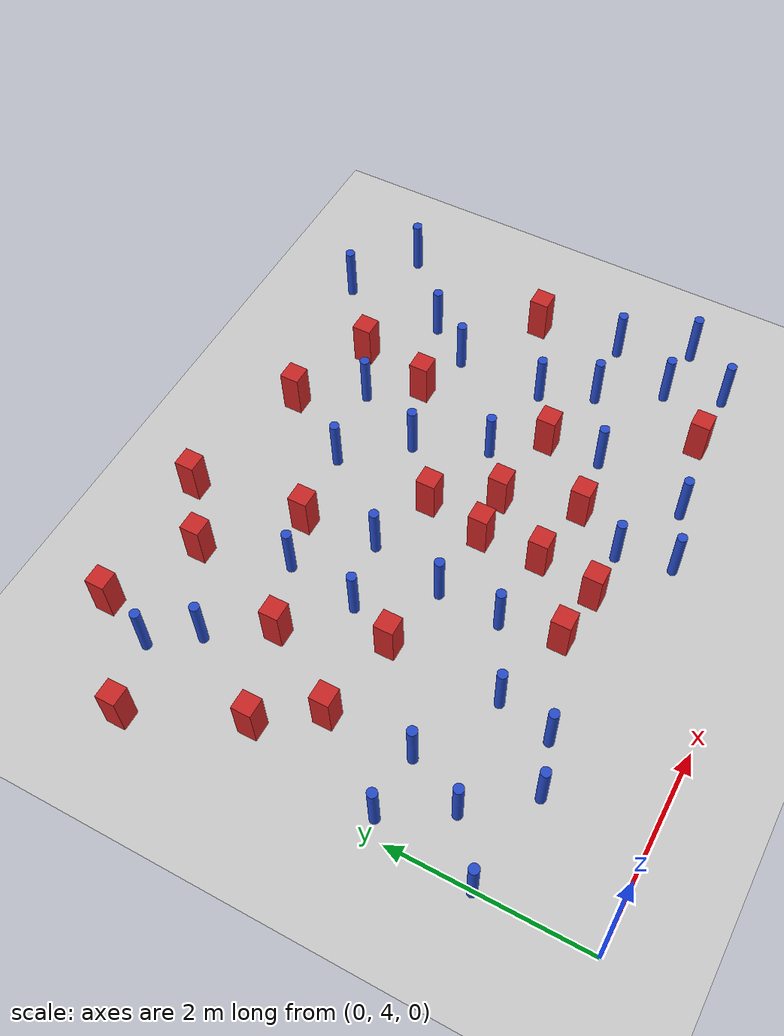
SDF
<sdf version="1.6">
 <world name="default">
  <model name="ground_plane">
   <static>1</static>
   <link name="link">
    <collision name="collision">
     <geometry><plane><normal>0 0 1</normal><size>100 100</size></plane></geometry>
     <surface><friction><ode><mu>100</mu><mu2>50</mu2></ode></friction></surface>
    </collision>
    <visual name="visual">
     <cast_shadows>0</cast_shadows>
     <geometry><plane><normal>0 0 1</normal><size>100 100</size></plane></geometry>
     <material>
      <ambient>1.0 1.0 1.0 1.0</ambient>
      <diffuse>0.8 0.8 0.8 1.0</diffuse>
      <specular>0.01 0.01 0.01 1.000000</specular>
     </material>
    </visual>
   </link>
  </model>
  <model name="square_post_obstacle4">
   <static>true</static>
   <pose>0.838831545188 9.4305301284 1.91545236811e-07 -7.35059704564e-06 1.12565212e-07 2.39332434364e-05</pose>
   <link name="link">
    <pose>0 0 0.25 0 -0 0</pose>
    <inertial>
     <mass>100</mass>
     <inertia>
      <ixx>0.166667</ixx>
      <ixy>0</ixy>
      <ixz>0</ixz>
      <iyy>0.166667</iyy>
      <iyz>0</iyz>
      <izz>0.166667</izz>
     </inertia>
    </inertial>
    <collision name="collision"><geometry><box><size>.2 .2 .5</size></box></geometry></collision>
    <visual name="visual">
     <geometry><box><size>.2 .2 .5</size></box></geometry>
     <material>
      <script><name>Gazebo/Red</name><uri>file://media/materials/scripts/gazebo.material</uri></script>
     </material>
    </visual>
   </link>
  </model>
  <model name="square_post_obstacle6">
   <static>true</static>
   <pose>-0.0670003100005 8.64714407239 1.91545236811e-07 -7.35059704564e-06 1.12565212e-07 2.39332434364e-05</pose>
   <link name="link">
    <pose>0 0 0.25 0 -0 0</pose>
    <inertial>
     <mass>100</mass>
     <inertia>
      <ixx>0.166667</ixx>
      <ixy>0</ixy>
      <ixz>0</ixz>
      <iyy>0.166667</iyy>
      <iyz>0</iyz>
      <izz>0.166667</izz>
     </inertia>
    </inertial>
    <collision name="collision"><geometry><box><size>.2 .2 .5</size></box></geometry></collision>
    <visual name="visual">
     <geometry><box><size>.2 .2 .5</size></box></geometry>
     <material>
      <script><name>Gazebo/Red</name><uri>file://media/materials/scripts/gazebo.material</uri></script>
     </material>
    </visual>
   </link>
  </model>
  <model name="pole_obstacle8">
   <static>true</static>
   <pose>5.28850879259 6.38729113192 7.38925637345e-09 -8.47170692796e-08 1.24976764786e-08 -1.74513093032e-07</pose>
   <link name="link">
    <pose>0 0 0.3 0 -0 0</pose>
    <inertial>
     <mass>1</mass>
     <inertia><ixx>0.145833</ixx><ixy>0</ixy><ixz>0</ixz><iyy>0.145833</iyy><iyz>0</iyz><izz>0.125</izz></inertia>
    </inertial>
    <collision name="collision">
     <geometry><cylinder><radius>0.05</radius><length>.6</length></cylinder></geometry>
    </collision>
    <visual name="visual">
     <geometry><cylinder><radius>0.05</radius><length>.6</length></cylinder></geometry>
     <material>
      <script><name>Gazebo/Blue</name><uri>file://media/materials/scripts/gazebo.material</uri></script>
     </material>
    </visual>
   </link>
  </model>
  <model name="square_post_obstacle16">
   <static>true</static>
   <pose>2.46480486465 5.48030747569 1.91545236811e-07 -7.35059704564e-06 1.12565212e-07 2.39332434364e-05</pose>
   <link name="link">
    <pose>0 0 0.25 0 -0 0</pose>
    <inertial>
     <mass>100</mass>
     <inertia>
      <ixx>0.166667</ixx>
      <ixy>0</ixy>
      <ixz>0</ixz>
      <iyy>0.166667</iyy>
      <iyz>0</iyz>
      <izz>0.166667</izz>
     </inertia>
    </inertial>
    <collision name="collision"><geometry><box><size>.2 .2 .5</size></box></geometry></collision>
    <visual name="visual">
     <geometry><box><size>.2 .2 .5</size></box></geometry>
     <material>
      <script><name>Gazebo/Red</name><uri>file://media/materials/scripts/gazebo.material</uri></script>
     </material>
    </visual>
   </link>
  </model>
  <model name="pole_obstacle11">
   <static>true</static>
   <pose>1.64120078932 5.71035406838 7.38925637345e-09 -8.47170692799e-08 1.24976765033e-08 -1.74513093018e-07</pose>
   <link name="link">
    <pose>0 0 0.3 0 -0 0</pose>
    <inertial>
     <mass>1</mass>
     <inertia><ixx>0.145833</ixx><ixy>0</ixy><ixz>0</ixz><iyy>0.145833</iyy><iyz>0</iyz><izz>0.125</izz></inertia>
    </inertial>
    <collision name="collision">
     <geometry><cylinder><radius>0.05</radius><length>.6</length></cylinder></geometry>
    </collision>
    <visual name="visual">
     <geometry><cylinder><radius>0.05</radius><length>.6</length></cylinder></geometry>
     <material>
      <script><name>Gazebo/Blue</name><uri>file://media/materials/scripts/gazebo.material</uri></script>
     </material>
    </visual>
   </link>
  </model>
  <model name="pole_obstacle15">
   <static>true</static>
   <pose>6.1654872875 8.98993450808 7.38925637345e-09 -8.471706928e-08 1.24976765081e-08 -1.74513093015e-07</pose>
   <link name="link">
    <pose>0 0 0.3 0 -0 0</pose>
    <inertial>
     <mass>1</mass>
     <inertia><ixx>0.145833</ixx><ixy>0</ixy><ixz>0</ixz><iyy>0.145833</iyy><iyz>0</iyz><izz>0.125</izz></inertia>
    </inertial>
    <collision name="collision">
     <geometry><cylinder><radius>0.05</radius><length>.6</length></cylinder></geometry>
    </collision>
    <visual name="visual">
     <geometry><cylinder><radius>0.05</radius><length>.6</length></cylinder></geometry>
     <material>
      <script><name>Gazebo/Blue</name><uri>file://media/materials/scripts/gazebo.material</uri></script>
     </material>
    </visual>
   </link>
  </model>
  <model name="square_post_obstacle26">
   <static>true</static>
   <pose>2.49713794785 8.27305381589 1.91545236811e-07 -7.35059704564e-06 1.12565212e-07 2.39332434364e-05</pose>
   <link name="link">
    <pose>0 0 0.25 0 -0 0</pose>
    <inertial>
     <mass>100</mass>
     <inertia>
      <ixx>0.166667</ixx>
      <ixy>0</ixy>
      <ixz>0</ixz>
      <iyy>0.166667</iyy>
      <iyz>0</iyz>
      <izz>0.166667</izz>
     </inertia>
    </inertial>
    <collision name="collision"><geometry><box><size>.2 .2 .5</size></box></geometry></collision>
    <visual name="visual">
     <geometry><box><size>.2 .2 .5</size></box></geometry>
     <material>
      <script><name>Gazebo/Red</name><uri>file://media/materials/scripts/gazebo.material</uri></script>
     </material>
    </visual>
   </link>
  </model>
  <model name="square_post_obstacle29">
   <static>true</static>
   <pose>4.49870740609 6.58374090806 1.91545236811e-07 -7.35059704564e-06 1.12565212e-07 2.39332434364e-05</pose>
   <link name="link">
    <pose>0 0 0.25 0 -0 0</pose>
    <inertial>
     <mass>100</mass>
     <inertia>
      <ixx>0.166667</ixx>
      <ixy>0</ixy>
      <ixz>0</ixz>
      <iyy>0.166667</iyy>
      <iyz>0</iyz>
      <izz>0.166667</izz>
     </inertia>
    </inertial>
    <collision name="collision"><geometry><box><size>.2 .2 .5</size></box></geometry></collision>
    <visual name="visual">
     <geometry><box><size>.2 .2 .5</size></box></geometry>
     <material>
      <script><name>Gazebo/Red</name><uri>file://media/materials/scripts/gazebo.material</uri></script>
     </material>
    </visual>
   </link>
  </model>
  <model name="pole_obstacle26">
   <static>true</static>
   <pose>-0.00314724878151 5.15009257863 7.38925637345e-09 -8.471706928e-08 1.24976765086e-08 -1.74513093017e-07</pose>
   <link name="link">
    <pose>0 0 0.3 0 -0 0</pose>
    <inertial>
     <mass>1</mass>
     <inertia><ixx>0.145833</ixx><ixy>0</ixy><ixz>0</ixz><iyy>0.145833</iyy><iyz>0</iyz><izz>0.125</izz></inertia>
    </inertial>
    <collision name="collision">
     <geometry><cylinder><radius>0.05</radius><length>.6</length></cylinder></geometry>
    </collision>
    <visual name="visual">
     <geometry><cylinder><radius>0.05</radius><length>.6</length></cylinder></geometry>
     <material>
      <script><name>Gazebo/Blue</name><uri>file://media/materials/scripts/gazebo.material</uri></script>
     </material>
    </visual>
   </link>
  </model>
  <model name="pole_obstacle33">
   <static>true</static>
   <pose>3.30640051247 8.38095119301 7.38925637345e-09 -8.47170692793e-08 1.24976764408e-08 -1.74513093041e-07</pose>
   <link name="link">
    <pose>0 0 0.3 0 -0 0</pose>
    <inertial>
     <mass>1</mass>
     <inertia><ixx>0.145833</ixx><ixy>0</ixy><ixz>0</ixz><iyy>0.145833</iyy><iyz>0</iyz><izz>0.125</izz></inertia>
    </inertial>
    <collision name="collision">
     <geometry><cylinder><radius>0.05</radius><length>.6</length></cylinder></geometry>
    </collision>
    <visual name="visual">
     <geometry><cylinder><radius>0.05</radius><length>.6</length></cylinder></geometry>
     <material>
      <script><name>Gazebo/Blue</name><uri>file://media/materials/scripts/gazebo.material</uri></script>
     </material>
    </visual>
   </link>
  </model>
  <model name="pole_obstacle34">
   <static>true</static>
   <pose>0.803339244444 6.14618215434 7.38925637345e-09 -8.471706928e-08 1.24976765086e-08 -1.74513093015e-07</pose>
   <link name="link">
    <pose>0 0 0.3 0 -0 0</pose>
    <inertial>
     <mass>1</mass>
     <inertia><ixx>0.145833</ixx><ixy>0</ixy><ixz>0</ixz><iyy>0.145833</iyy><iyz>0</iyz><izz>0.125</izz></inertia>
    </inertial>
    <collision name="collision">
     <geometry><cylinder><radius>0.05</radius><length>.6</length></cylinder></geometry>
    </collision>
    <visual name="visual">
     <geometry><cylinder><radius>0.05</radius><length>.6</length></cylinder></geometry>
     <material>
      <script><name>Gazebo/Blue</name><uri>file://media/materials/scripts/gazebo.material</uri></script>
     </material>
    </visual>
   </link>
  </model>
  <model name="square_post_obstacle36">
   <static>true</static>
   <pose>2.34214126111 9.46609434131 1.91545236811e-07 -7.35059704564e-06 1.12565212e-07 2.39332434364e-05</pose>
   <link name="link">
    <pose>0 0 0.25 0 -0 0</pose>
    <inertial>
     <mass>100</mass>
     <inertia>
      <ixx>0.166667</ixx>
      <ixy>0</ixy>
      <ixz>0</ixz>
      <iyy>0.166667</iyy>
      <iyz>0</iyz>
      <izz>0.166667</izz>
     </inertia>
    </inertial>
    <collision name="collision"><geometry><box><size>.2 .2 .5</size></box></geometry></collision>
    <visual name="visual">
     <geometry><box><size>.2 .2 .5</size></box></geometry>
     <material>
      <script><name>Gazebo/Red</name><uri>file://media/materials/scripts/gazebo.material</uri></script>
     </material>
    </visual>
   </link>
  </model>
  <model name="pole_obstacle40">
   <static>true</static>
   <pose>3.81581579694 7.78515670681 7.38925637345e-09 -8.47170692798e-08 1.24976765033e-08 -1.74513093019e-07</pose>
   <link name="link">
    <pose>0 0 0.3 0 -0 0</pose>
    <inertial>
     <mass>1</mass>
     <inertia><ixx>0.145833</ixx><ixy>0</ixy><ixz>0</ixz><iyy>0.145833</iyy><iyz>0</iyz><izz>0.125</izz></inertia>
    </inertial>
    <collision name="collision">
     <geometry><cylinder><radius>0.05</radius><length>.6</length></cylinder></geometry>
    </collision>
    <visual name="visual">
     <geometry><cylinder><radius>0.05</radius><length>.6</length></cylinder></geometry>
     <material>
      <script><name>Gazebo/Blue</name><uri>file://media/materials/scripts/gazebo.material</uri></script>
     </material>
    </visual>
   </link>
  </model>
  <model name="pole_obstacle41">
   <static>true</static>
   <pose>0.941815118839 8.4446619741 7.38925637345e-09 -8.47170692797e-08 1.249767648e-08 -1.74513093032e-07</pose>
   <link name="link">
    <pose>0 0 0.3 0 -0 0</pose>
    <inertial>
     <mass>1</mass>
     <inertia><ixx>0.145833</ixx><ixy>0</ixy><ixz>0</ixz><iyy>0.145833</iyy><iyz>0</iyz><izz>0.125</izz></inertia>
    </inertial>
    <collision name="collision">
     <geometry><cylinder><radius>0.05</radius><length>.6</length></cylinder></geometry>
    </collision>
    <visual name="visual">
     <geometry><cylinder><radius>0.05</radius><length>.6</length></cylinder></geometry>
     <material>
      <script><name>Gazebo/Blue</name><uri>file://media/materials/scripts/gazebo.material</uri></script>
     </material>
    </visual>
   </link>
  </model>
  <model name="pole_obstacle42">
   <static>true</static>
   <pose>5.99914364373 6.43813180377 7.38925637345e-09 -8.47170692796e-08 1.24976764786e-08 -1.74513093032e-07</pose>
   <link name="link">
    <pose>0 0 0.3 0 -0 0</pose>
    <inertial>
     <mass>1</mass>
     <inertia><ixx>0.145833</ixx><ixy>0</ixy><ixz>0</ixz><iyy>0.145833</iyy><iyz>0</iyz><izz>0.125</izz></inertia>
    </inertial>
    <collision name="collision">
     <geometry><cylinder><radius>0.05</radius><length>.6</length></cylinder></geometry>
    </collision>
    <visual name="visual">
     <geometry><cylinder><radius>0.05</radius><length>.6</length></cylinder></geometry>
     <material>
      <script><name>Gazebo/Blue</name><uri>file://media/materials/scripts/gazebo.material</uri></script>
     </material>
    </visual>
   </link>
  </model>
  <model name="pole_obstacle44">
   <static>true</static>
   <pose>3.5659598498 5.41044736293 7.38925637345e-09 -8.47170692798e-08 1.24976765033e-08 -1.74513093019e-07</pose>
   <link name="link">
    <pose>0 0 0.3 0 -0 0</pose>
    <inertial>
     <mass>1</mass>
     <inertia><ixx>0.145833</ixx><ixy>0</ixy><ixz>0</ixz><iyy>0.145833</iyy><iyz>0</iyz><izz>0.125</izz></inertia>
    </inertial>
    <collision name="collision">
     <geometry><cylinder><radius>0.05</radius><length>.6</length></cylinder></geometry>
    </collision>
    <visual name="visual">
     <geometry><cylinder><radius>0.05</radius><length>.6</length></cylinder></geometry>
     <material>
      <script><name>Gazebo/Blue</name><uri>file://media/materials/scripts/gazebo.material</uri></script>
     </material>
    </visual>
   </link>
  </model>
  <model name="pole_obstacle45">
   <static>true</static>
   <pose>4.12362382645 7.05300713527 7.38925637345e-09 -8.47170692796e-08 1.24976764786e-08 -1.74513093032e-07</pose>
   <link name="link">
    <pose>0 0 0.3 0 -0 0</pose>
    <inertial>
     <mass>1</mass>
     <inertia><ixx>0.145833</ixx><ixy>0</ixy><ixz>0</ixz><iyy>0.145833</iyy><iyz>0</iyz><izz>0.125</izz></inertia>
    </inertial>
    <collision name="collision">
     <geometry><cylinder><radius>0.05</radius><length>.6</length></cylinder></geometry>
    </collision>
    <visual name="visual">
     <geometry><cylinder><radius>0.05</radius><length>.6</length></cylinder></geometry>
     <material>
      <script><name>Gazebo/Blue</name><uri>file://media/materials/scripts/gazebo.material</uri></script>
     </material>
    </visual>
   </link>
  </model>
  <model name="square_post_obstacle50">
   <static>true</static>
   <pose>3.14828291518 6.02991113108 1.91545236811e-07 -7.35059704564e-06 1.12565212e-07 2.39332434364e-05</pose>
   <link name="link">
    <pose>0 0 0.25 0 -0 0</pose>
    <inertial>
     <mass>100</mass>
     <inertia>
      <ixx>0.166667</ixx>
      <ixy>0</ixy>
      <ixz>0</ixz>
      <iyy>0.166667</iyy>
      <iyz>0</iyz>
      <izz>0.166667</izz>
     </inertia>
    </inertial>
    <collision name="collision"><geometry><box><size>.2 .2 .5</size></box></geometry></collision>
    <visual name="visual">
     <geometry><box><size>.2 .2 .5</size></box></geometry>
     <material>
      <script><name>Gazebo/Red</name><uri>file://media/materials/scripts/gazebo.material</uri></script>
     </material>
    </visual>
   </link>
  </model>
  <model name="square_post_obstacle51">
   <static>true</static>
   <pose>0.395598050557 7.55262319142 1.91545236811e-07 -7.35059704564e-06 1.12565212e-07 2.39332434364e-05</pose>
   <link name="link">
    <pose>0 0 0.25 0 -0 0</pose>
    <inertial>
     <mass>100</mass>
     <inertia>
      <ixx>0.166667</ixx>
      <ixy>0</ixy>
      <ixz>0</ixz>
      <iyy>0.166667</iyy>
      <iyz>0</iyz>
      <izz>0.166667</izz>
     </inertia>
    </inertial>
    <collision name="collision"><geometry><box><size>.2 .2 .5</size></box></geometry></collision>
    <visual name="visual">
     <geometry><box><size>.2 .2 .5</size></box></geometry>
     <material>
      <script><name>Gazebo/Red</name><uri>file://media/materials/scripts/gazebo.material</uri></script>
     </material>
    </visual>
   </link>
  </model>
  <model name="square_post_obstacle57">
   <static>true</static>
   <pose>4.51955316403 8.04438053174 1.91545236811e-07 -7.35059704564e-06 1.12565212e-07 2.39332434364e-05</pose>
   <link name="link">
    <pose>0 0 0.25 0 -0 0</pose>
    <inertial>
     <mass>100</mass>
     <inertia>
      <ixx>0.166667</ixx>
      <ixy>0</ixy>
      <ixz>0</ixz>
      <iyy>0.166667</iyy>
      <iyz>0</iyz>
      <izz>0.166667</izz>
     </inertia>
    </inertial>
    <collision name="collision"><geometry><box><size>.2 .2 .5</size></box></geometry></collision>
    <visual name="visual">
     <geometry><box><size>.2 .2 .5</size></box></geometry>
     <material>
      <script><name>Gazebo/Red</name><uri>file://media/materials/scripts/gazebo.material</uri></script>
     </material>
    </visual>
   </link>
  </model>
  <model name="square_post_obstacle65">
   <static>true</static>
   <pose>3.77294712902 9.14436820304 1.91545236811e-07 -7.35059704564e-06 1.12565212e-07 2.39332434364e-05</pose>
   <link name="link">
    <pose>0 0 0.25 0 -0 0</pose>
    <inertial>
     <mass>100</mass>
     <inertia>
      <ixx>0.166667</ixx>
      <ixy>0</ixy>
      <ixz>0</ixz>
      <iyy>0.166667</iyy>
      <iyz>0</iyz>
      <izz>0.166667</izz>
     </inertia>
    </inertial>
    <collision name="collision"><geometry><box><size>.2 .2 .5</size></box></geometry></collision>
    <visual name="visual">
     <geometry><box><size>.2 .2 .5</size></box></geometry>
     <material>
      <script><name>Gazebo/Red</name><uri>file://media/materials/scripts/gazebo.material</uri></script>
     </material>
    </visual>
   </link>
  </model>
  <model name="pole_obstacle65">
   <static>true</static>
   <pose>5.87332342258 5.18392865016 7.38925637345e-09 -8.47170692796e-08 1.24976764786e-08 -1.74513093032e-07</pose>
   <link name="link">
    <pose>0 0 0.3 0 -0 0</pose>
    <inertial>
     <mass>1</mass>
     <inertia><ixx>0.145833</ixx><ixy>0</ixy><ixz>0</ixz><iyy>0.145833</iyy><iyz>0</iyz><izz>0.125</izz></inertia>
    </inertial>
    <collision name="collision">
     <geometry><cylinder><radius>0.05</radius><length>.6</length></cylinder></geometry>
    </collision>
    <visual name="visual">
     <geometry><cylinder><radius>0.05</radius><length>.6</length></cylinder></geometry>
     <material>
      <script><name>Gazebo/Blue</name><uri>file://media/materials/scripts/gazebo.material</uri></script>
     </material>
    </visual>
   </link>
  </model>
  <model name="square_post_obstacle69">
   <static>true</static>
   <pose>3.25578893181 7.28776778159 1.91545236811e-07 -7.35059704564e-06 1.12565212e-07 2.39332434364e-05</pose>
   <link name="link">
    <pose>0 0 0.25 0 -0 0</pose>
    <inertial>
     <mass>100</mass>
     <inertia>
      <ixx>0.166667</ixx>
      <ixy>0</ixy>
      <ixz>0</ixz>
      <iyy>0.166667</iyy>
      <iyz>0</iyz>
      <izz>0.166667</izz>
     </inertia>
    </inertial>
    <collision name="collision"><geometry><box><size>.2 .2 .5</size></box></geometry></collision>
    <visual name="visual">
     <geometry><box><size>.2 .2 .5</size></box></geometry>
     <material>
      <script><name>Gazebo/Red</name><uri>file://media/materials/scripts/gazebo.material</uri></script>
     </material>
    </visual>
   </link>
  </model>
  <model name="pole_obstacle89">
   <static>true</static>
   <pose>1.99102480122 8.12549361786 7.38925637345e-09 -8.47170692798e-08 1.24976764928e-08 -1.74513093023e-07</pose>
   <link name="link">
    <pose>0 0 0.3 0 -0 0</pose>
    <inertial>
     <mass>1</mass>
     <inertia><ixx>0.145833</ixx><ixy>0</ixy><ixz>0</ixz><iyy>0.145833</iyy><iyz>0</iyz><izz>0.125</izz></inertia>
    </inertial>
    <collision name="collision">
     <geometry><cylinder><radius>0.05</radius><length>.6</length></cylinder></geometry>
    </collision>
    <visual name="visual">
     <geometry><cylinder><radius>0.05</radius><length>.6</length></cylinder></geometry>
     <material>
      <script><name>Gazebo/Blue</name><uri>file://media/materials/scripts/gazebo.material</uri></script>
     </material>
    </visual>
   </link>
  </model>
  <model name="pole_obstacle92">
   <static>true</static>
   <pose>5.07251637455 7.86931434658 7.38925637345e-09 -8.47170692796e-08 1.24976764786e-08 -1.74513093032e-07</pose>
   <link name="link">
    <pose>0 0 0.3 0 -0 0</pose>
    <inertial>
     <mass>1</mass>
     <inertia><ixx>0.145833</ixx><ixy>0</ixy><ixz>0</ixz><iyy>0.145833</iyy><iyz>0</iyz><izz>0.125</izz></inertia>
    </inertial>
    <collision name="collision">
     <geometry><cylinder><radius>0.05</radius><length>.6</length></cylinder></geometry>
    </collision>
    <visual name="visual">
     <geometry><cylinder><radius>0.05</radius><length>.6</length></cylinder></geometry>
     <material>
      <script><name>Gazebo/Blue</name><uri>file://media/materials/scripts/gazebo.material</uri></script>
     </material>
    </visual>
   </link>
  </model>
  <model name="pole_obstacle93">
   <static>true</static>
   <pose>5.66138880275 5.756640712 7.38925637345e-09 -8.47170692796e-08 1.24976764786e-08 -1.74513093032e-07</pose>
   <link name="link">
    <pose>0 0 0.3 0 -0 0</pose>
    <inertial>
     <mass>1</mass>
     <inertia><ixx>0.145833</ixx><ixy>0</ixy><ixz>0</ixz><iyy>0.145833</iyy><iyz>0</iyz><izz>0.125</izz></inertia>
    </inertial>
    <collision name="collision">
     <geometry><cylinder><radius>0.05</radius><length>.6</length></cylinder></geometry>
    </collision>
    <visual name="visual">
     <geometry><cylinder><radius>0.05</radius><length>.6</length></cylinder></geometry>
     <material>
      <script><name>Gazebo/Blue</name><uri>file://media/materials/scripts/gazebo.material</uri></script>
     </material>
    </visual>
   </link>
  </model>
  <model name="pole_obstacle95">
   <static>true</static>
   <pose>1.88029694942 7.36072586278 7.38925637345e-09 -8.47170692799e-08 1.24976765033e-08 -1.74513093018e-07</pose>
   <link name="link">
    <pose>0 0 0.3 0 -0 0</pose>
    <inertial>
     <mass>1</mass>
     <inertia><ixx>0.145833</ixx><ixy>0</ixy><ixz>0</ixz><iyy>0.145833</iyy><iyz>0</iyz><izz>0.125</izz></inertia>
    </inertial>
    <collision name="collision">
     <geometry><cylinder><radius>0.05</radius><length>.6</length></cylinder></geometry>
    </collision>
    <visual name="visual">
     <geometry><cylinder><radius>0.05</radius><length>.6</length></cylinder></geometry>
     <material>
      <script><name>Gazebo/Blue</name><uri>file://media/materials/scripts/gazebo.material</uri></script>
     </material>
    </visual>
   </link>
  </model>
  <model name="pole_obstacle96">
   <static>true</static>
   <pose>4.17869636455 8.53342953225 7.38925637345e-09 -8.471706928e-08 1.24976765081e-08 -1.74513093015e-07</pose>
   <link name="link">
    <pose>0 0 0.3 0 -0 0</pose>
    <inertial>
     <mass>1</mass>
     <inertia><ixx>0.145833</ixx><ixy>0</ixy><ixz>0</ixz><iyy>0.145833</iyy><iyz>0</iyz><izz>0.125</izz></inertia>
    </inertial>
    <collision name="collision">
     <geometry><cylinder><radius>0.05</radius><length>.6</length></cylinder></geometry>
    </collision>
    <visual name="visual">
     <geometry><cylinder><radius>0.05</radius><length>.6</length></cylinder></geometry>
     <material>
      <script><name>Gazebo/Blue</name><uri>file://media/materials/scripts/gazebo.material</uri></script>
     </material>
    </visual>
   </link>
  </model>
  <model name="square_post_obstacle86">
   <static>true</static>
   <pose>5.17518690599 5.20205577149 1.91545236811e-07 -7.35059704564e-06 1.12565212e-07 2.39332434364e-05</pose>
   <link name="link">
    <pose>0 0 0.25 0 -0 0</pose>
    <inertial>
     <mass>100</mass>
     <inertia>
      <ixx>0.166667</ixx>
      <ixy>0</ixy>
      <ixz>0</ixz>
      <iyy>0.166667</iyy>
      <iyz>0</iyz>
      <izz>0.166667</izz>
     </inertia>
    </inertial>
    <collision name="collision"><geometry><box><size>.2 .2 .5</size></box></geometry></collision>
    <visual name="visual">
     <geometry><box><size>.2 .2 .5</size></box></geometry>
     <material>
      <script><name>Gazebo/Red</name><uri>file://media/materials/scripts/gazebo.material</uri></script>
     </material>
    </visual>
   </link>
  </model>
  <model name="square_post_obstacle88">
   <static>true</static>
   <pose>3.62369598327 6.68792584651 1.91545236811e-07 -7.35059704564e-06 1.12565212e-07 2.39332434364e-05</pose>
   <link name="link">
    <pose>0 0 0.25 0 -0 0</pose>
    <inertial>
     <mass>100</mass>
     <inertia>
      <ixx>0.166667</ixx>
      <ixy>0</ixy>
      <ixz>0</ixz>
      <iyy>0.166667</iyy>
      <iyz>0</iyz>
      <izz>0.166667</izz>
     </inertia>
    </inertial>
    <collision name="collision"><geometry><box><size>.2 .2 .5</size></box></geometry></collision>
    <visual name="visual">
     <geometry><box><size>.2 .2 .5</size></box></geometry>
     <material>
      <script><name>Gazebo/Red</name><uri>file://media/materials/scripts/gazebo.material</uri></script>
     </material>
    </visual>
   </link>
  </model>
  <model name="pole_obstacle104">
   <static>true</static>
   <pose>6.31962184033 5.71522740162 7.38925637345e-09 -8.47170692796e-08 1.24976764786e-08 -1.74513093032e-07</pose>
   <link name="link">
    <pose>0 0 0.3 0 -0 0</pose>
    <inertial>
     <mass>1</mass>
     <inertia><ixx>0.145833</ixx><ixy>0</ixy><ixz>0</ixz><iyy>0.145833</iyy><iyz>0</iyz><izz>0.125</izz></inertia>
    </inertial>
    <collision name="collision">
     <geometry><cylinder><radius>0.05</radius><length>.6</length></cylinder></geometry>
    </collision>
    <visual name="visual">
     <geometry><cylinder><radius>0.05</radius><length>.6</length></cylinder></geometry>
     <material>
      <script><name>Gazebo/Blue</name><uri>file://media/materials/scripts/gazebo.material</uri></script>
     </material>
    </visual>
   </link>
  </model>
  <model name="pole_obstacle112">
   <static>true</static>
   <pose>3.69015923442 4.85860702765 7.38925637345e-09 -8.47170692798e-08 1.24976765033e-08 -1.74513093019e-07</pose>
   <link name="link">
    <pose>0 0 0.3 0 -0 0</pose>
    <inertial>
     <mass>1</mass>
     <inertia><ixx>0.145833</ixx><ixy>0</ixy><ixz>0</ixz><iyy>0.145833</iyy><iyz>0</iyz><izz>0.125</izz></inertia>
    </inertial>
    <collision name="collision">
     <geometry><cylinder><radius>0.05</radius><length>.6</length></cylinder></geometry>
    </collision>
    <visual name="visual">
     <geometry><cylinder><radius>0.05</radius><length>.6</length></cylinder></geometry>
     <material>
      <script><name>Gazebo/Blue</name><uri>file://media/materials/scripts/gazebo.material</uri></script>
     </material>
    </visual>
   </link>
  </model>
  <model name="pole_obstacle114">
   <static>true</static>
   <pose>1.00159224929 4.99490499071 7.38925637345e-09 -8.47170692799e-08 1.24976765021e-08 -1.74513093019e-07</pose>
   <link name="link">
    <pose>0 0 0.3 0 -0 0</pose>
    <inertial>
     <mass>1</mass>
     <inertia><ixx>0.145833</ixx><ixy>0</ixy><ixz>0</ixz><iyy>0.145833</iyy><iyz>0</iyz><izz>0.125</izz></inertia>
    </inertial>
    <collision name="collision">
     <geometry><cylinder><radius>0.05</radius><length>.6</length></cylinder></geometry>
    </collision>
    <visual name="visual">
     <geometry><cylinder><radius>0.05</radius><length>.6</length></cylinder></geometry>
     <material>
      <script><name>Gazebo/Blue</name><uri>file://media/materials/scripts/gazebo.material</uri></script>
     </material>
    </visual>
   </link>
  </model>
  <model name="square_post_obstacle108">
   <static>true</static>
   <pose>4.70273877223 8.82447235563 1.91545236811e-07 -7.35059704564e-06 1.12565212e-07 2.39332434364e-05</pose>
   <link name="link">
    <pose>0 0 0.25 0 -0 0</pose>
    <inertial>
     <mass>100</mass>
     <inertia>
      <ixx>0.166667</ixx>
      <ixy>0</ixy>
      <ixz>0</ixz>
      <iyy>0.166667</iyy>
      <iyz>0</iyz>
      <izz>0.166667</izz>
     </inertia>
    </inertial>
    <collision name="collision"><geometry><box><size>.2 .2 .5</size></box></geometry></collision>
    <visual name="visual">
     <geometry><box><size>.2 .2 .5</size></box></geometry>
     <material>
      <script><name>Gazebo/Red</name><uri>file://media/materials/scripts/gazebo.material</uri></script>
     </material>
    </visual>
   </link>
  </model>
  <model name="square_post_obstacle111">
   <static>true</static>
   <pose>0.792365545154 7.01137770511 1.91545236811e-07 -7.35059704564e-06 1.12565212e-07 2.39332434364e-05</pose>
   <link name="link">
    <pose>0 0 0.25 0 -0 0</pose>
    <inertial>
     <mass>100</mass>
     <inertia>
      <ixx>0.166667</ixx>
      <ixy>0</ixy>
      <ixz>0</ixz>
      <iyy>0.166667</iyy>
      <iyz>0</iyz>
      <izz>0.166667</izz>
     </inertia>
    </inertial>
    <collision name="collision"><geometry><box><size>.2 .2 .5</size></box></geometry></collision>
    <visual name="visual">
     <geometry><box><size>.2 .2 .5</size></box></geometry>
     <material>
      <script><name>Gazebo/Red</name><uri>file://media/materials/scripts/gazebo.material</uri></script>
     </material>
    </visual>
   </link>
  </model>
  <model name="pole_obstacle127">
   <static>true</static>
   <pose>0.166805112163 6.17388702242 7.38925637345e-09 -8.471706928e-08 1.24976765036e-08 -1.74513093019e-07</pose>
   <link name="link">
    <pose>0 0 0.3 0 -0 0</pose>
    <inertial>
     <mass>1</mass>
     <inertia><ixx>0.145833</ixx><ixy>0</ixy><ixz>0</ixz><iyy>0.145833</iyy><iyz>0</iyz><izz>0.125</izz></inertia>
    </inertial>
    <collision name="collision">
     <geometry><cylinder><radius>0.05</radius><length>.6</length></cylinder></geometry>
    </collision>
    <visual name="visual">
     <geometry><cylinder><radius>0.05</radius><length>.6</length></cylinder></geometry>
     <material>
      <script><name>Gazebo/Blue</name><uri>file://media/materials/scripts/gazebo.material</uri></script>
     </material>
    </visual>
   </link>
  </model>
  <model name="pole_obstacle135">
   <static>true</static>
   <pose>5.37744079043 8.31585437256 7.38925637345e-09 -8.471706928e-08 1.24976765081e-08 -1.74513093015e-07</pose>
   <link name="link">
    <pose>0 0 0.3 0 -0 0</pose>
    <inertial>
     <mass>1</mass>
     <inertia><ixx>0.145833</ixx><ixy>0</ixy><ixz>0</ixz><iyy>0.145833</iyy><iyz>0</iyz><izz>0.125</izz></inertia>
    </inertial>
    <collision name="collision">
     <geometry><cylinder><radius>0.05</radius><length>.6</length></cylinder></geometry>
    </collision>
    <visual name="visual">
     <geometry><cylinder><radius>0.05</radius><length>.6</length></cylinder></geometry>
     <material>
      <script><name>Gazebo/Blue</name><uri>file://media/materials/scripts/gazebo.material</uri></script>
     </material>
    </visual>
   </link>
  </model>
  <model name="pole_obstacle138">
   <static>true</static>
   <pose>4.5229988788 6.00658941064 7.38925637345e-09 -8.47170692796e-08 1.24976764786e-08 -1.74513093032e-07</pose>
   <link name="link">
    <pose>0 0 0.3 0 -0 0</pose>
    <inertial>
     <mass>1</mass>
     <inertia><ixx>0.145833</ixx><ixy>0</ixy><ixz>0</ixz><iyy>0.145833</iyy><iyz>0</iyz><izz>0.125</izz></inertia>
    </inertial>
    <collision name="collision">
     <geometry><cylinder><radius>0.05</radius><length>.6</length></cylinder></geometry>
    </collision>
    <visual name="visual">
     <geometry><cylinder><radius>0.05</radius><length>.6</length></cylinder></geometry>
     <material>
      <script><name>Gazebo/Blue</name><uri>file://media/materials/scripts/gazebo.material</uri></script>
     </material>
    </visual>
   </link>
  </model>
  <model name="square_post_obstacle120">
   <static>true</static>
   <pose>1.3107776813 7.85189310081 1.91545236811e-07 -7.35059704564e-06 1.12565212e-07 2.39332434364e-05</pose>
   <link name="link">
    <pose>0 0 0.25 0 -0 0</pose>
    <inertial>
     <mass>100</mass>
     <inertia>
      <ixx>0.166667</ixx>
      <ixy>0</ixy>
      <ixz>0</ixz>
      <iyy>0.166667</iyy>
      <iyz>0</iyz>
      <izz>0.166667</izz>
     </inertia>
    </inertial>
    <collision name="collision"><geometry><box><size>.2 .2 .5</size></box></geometry></collision>
    <visual name="visual">
     <geometry><box><size>.2 .2 .5</size></box></geometry>
     <material>
      <script><name>Gazebo/Red</name><uri>file://media/materials/scripts/gazebo.material</uri></script>
     </material>
    </visual>
   </link>
  </model>
  <model name="pole_obstacle154">
   <static>true</static>
   <pose>4.32623315689 5.03975872655 7.38925637345e-09 -8.47170692796e-08 1.24976764786e-08 -1.74513093032e-07</pose>
   <link name="link">
    <pose>0 0 0.3 0 -0 0</pose>
    <inertial>
     <mass>1</mass>
     <inertia><ixx>0.145833</ixx><ixy>0</ixy><ixz>0</ixz><iyy>0.145833</iyy><iyz>0</iyz><izz>0.125</izz></inertia>
    </inertial>
    <collision name="collision">
     <geometry><cylinder><radius>0.05</radius><length>.6</length></cylinder></geometry>
    </collision>
    <visual name="visual">
     <geometry><cylinder><radius>0.05</radius><length>.6</length></cylinder></geometry>
     <material>
      <script><name>Gazebo/Blue</name><uri>file://media/materials/scripts/gazebo.material</uri></script>
     </material>
    </visual>
   </link>
  </model>
  <model name="square_post_obstacle151">
   <static>true</static>
   <pose>3.03325420936 5.42050849066 1.91545236811e-07 -7.35059704564e-06 1.12565212e-07 2.39332434364e-05</pose>
   <link name="link">
    <pose>0 0 0.25 0 -0 0</pose>
    <inertial>
     <mass>100</mass>
     <inertia>
      <ixx>0.166667</ixx>
      <ixy>0</ixy>
      <ixz>0</ixz>
      <iyy>0.166667</iyy>
      <iyz>0</iyz>
      <izz>0.166667</izz>
     </inertia>
    </inertial>
    <collision name="collision"><geometry><box><size>.2 .2 .5</size></box></geometry></collision>
    <visual name="visual">
     <geometry><box><size>.2 .2 .5</size></box></geometry>
     <material>
      <script><name>Gazebo/Red</name><uri>file://media/materials/scripts/gazebo.material</uri></script>
     </material>
    </visual>
   </link>
  </model>
  <model name="square_post_obstacle153">
   <static>true</static>
   <pose>3.12435649427 6.65355140513 1.91545236811e-07 -7.35059704564e-06 1.12565212e-07 2.39332434364e-05</pose>
   <link name="link">
    <pose>0 0 0.25 0 -0 0</pose>
    <inertial>
     <mass>100</mass>
     <inertia>
      <ixx>0.166667</ixx>
      <ixy>0</ixy>
      <ixz>0</ixz>
      <iyy>0.166667</iyy>
      <iyz>0</iyz>
      <izz>0.166667</izz>
     </inertia>
    </inertial>
    <collision name="collision"><geometry><box><size>.2 .2 .5</size></box></geometry></collision>
    <visual name="visual">
     <geometry><box><size>.2 .2 .5</size></box></geometry>
     <material>
      <script><name>Gazebo/Red</name><uri>file://media/materials/scripts/gazebo.material</uri></script>
     </material>
    </visual>
   </link>
  </model>
  <model name="pole_obstacle166">
   <static>true</static>
   <pose>2.57638518718 7.52082503435 7.38925637345e-09 -8.47170692798e-08 1.24976765033e-08 -1.74513093019e-07</pose>
   <link name="link">
    <pose>0 0 0.3 0 -0 0</pose>
    <inertial>
     <mass>1</mass>
     <inertia><ixx>0.145833</ixx><ixy>0</ixy><ixz>0</ixz><iyy>0.145833</iyy><iyz>0</iyz><izz>0.125</izz></inertia>
    </inertial>
    <collision name="collision">
     <geometry><cylinder><radius>0.05</radius><length>.6</length></cylinder></geometry>
    </collision>
    <visual name="visual">
     <geometry><cylinder><radius>0.05</radius><length>.6</length></cylinder></geometry>
     <material>
      <script><name>Gazebo/Blue</name><uri>file://media/materials/scripts/gazebo.material</uri></script>
     </material>
    </visual>
   </link>
  </model>
  <model name="pole_obstacle176">
   <static>true</static>
   <pose>5.04070436075 6.9260372041 7.38925637345e-09 -8.47170692796e-08 1.24976764786e-08 -1.74513093032e-07</pose>
   <link name="link">
    <pose>0 0 0.3 0 -0 0</pose>
    <inertial>
     <mass>1</mass>
     <inertia><ixx>0.145833</ixx><ixy>0</ixy><ixz>0</ixz><iyy>0.145833</iyy><iyz>0</iyz><izz>0.125</izz></inertia>
    </inertial>
    <collision name="collision">
     <geometry><cylinder><radius>0.05</radius><length>.6</length></cylinder></geometry>
    </collision>
    <visual name="visual">
     <geometry><cylinder><radius>0.05</radius><length>.6</length></cylinder></geometry>
     <material>
      <script><name>Gazebo/Blue</name><uri>file://media/materials/scripts/gazebo.material</uri></script>
     </material>
    </visual>
   </link>
  </model>
  <model name="square_post_obstacle166">
   <static>true</static>
   <pose>1.73640393884 8.99613934601 1.91545236811e-07 -7.35059704564e-06 1.12565212e-07 2.39332434364e-05</pose>
   <link name="link">
    <pose>0 0 0.25 0 -0 0</pose>
    <inertial>
     <mass>100</mass>
     <inertia>
      <ixx>0.166667</ixx>
      <ixy>0</ixy>
      <ixz>0</ixz>
      <iyy>0.166667</iyy>
      <iyz>0</iyz>
      <izz>0.166667</izz>
     </inertia>
    </inertial>
    <collision name="collision"><geometry><box><size>.2 .2 .5</size></box></geometry></collision>
    <visual name="visual">
     <geometry><box><size>.2 .2 .5</size></box></geometry>
     <material>
      <script><name>Gazebo/Red</name><uri>file://media/materials/scripts/gazebo.material</uri></script>
     </material>
    </visual>
   </link>
  </model>
  <model name="square_post_obstacle167">
   <static>true</static>
   <pose>1.66955342811 6.8656312845 1.91545236811e-07 -7.35059704564e-06 1.12565212e-07 2.39332434364e-05</pose>
   <link name="link">
    <pose>0 0 0.25 0 -0 0</pose>
    <inertial>
     <mass>100</mass>
     <inertia>
      <ixx>0.166667</ixx>
      <ixy>0</ixy>
      <ixz>0</ixz>
      <iyy>0.166667</iyy>
      <iyz>0</iyz>
      <izz>0.166667</izz>
     </inertia>
    </inertial>
    <collision name="collision"><geometry><box><size>.2 .2 .5</size></box></geometry></collision>
    <visual name="visual">
     <geometry><box><size>.2 .2 .5</size></box></geometry>
     <material>
      <script><name>Gazebo/Red</name><uri>file://media/materials/scripts/gazebo.material</uri></script>
     </material>
    </visual>
   </link>
  </model>
  <model name="pole_obstacle181">
   <static>true</static>
   <pose>2.39292812844 6.72412753365 7.38925637345e-09 -8.47170692798e-08 1.24976765033e-08 -1.74513093019e-07</pose>
   <link name="link">
    <pose>0 0 0.3 0 -0 0</pose>
    <inertial>
     <mass>1</mass>
     <inertia><ixx>0.145833</ixx><ixy>0</ixy><ixz>0</ixz><iyy>0.145833</iyy><iyz>0</iyz><izz>0.125</izz></inertia>
    </inertial>
    <collision name="collision">
     <geometry><cylinder><radius>0.05</radius><length>.6</length></cylinder></geometry>
    </collision>
    <visual name="visual">
     <geometry><cylinder><radius>0.05</radius><length>.6</length></cylinder></geometry>
     <material>
      <script><name>Gazebo/Blue</name><uri>file://media/materials/scripts/gazebo.material</uri></script>
     </material>
    </visual>
   </link>
  </model>
  <model name="square_post_obstacle170">
   <static>true</static>
   <pose>5.92033671579 7.33169189473 1.91545236811e-07 -7.35059704564e-06 1.12565212e-07 2.39332434364e-05</pose>
   <link name="link">
    <pose>0 0 0.25 0 -0 0</pose>
    <inertial>
     <mass>100</mass>
     <inertia>
      <ixx>0.166667</ixx>
      <ixy>0</ixy>
      <ixz>0</ixz>
      <iyy>0.166667</iyy>
      <iyz>0</iyz>
      <izz>0.166667</izz>
     </inertia>
    </inertial>
    <collision name="collision"><geometry><box><size>.2 .2 .5</size></box></geometry></collision>
    <visual name="visual">
     <geometry><box><size>.2 .2 .5</size></box></geometry>
     <material>
      <script><name>Gazebo/Red</name><uri>file://media/materials/scripts/gazebo.material</uri></script>
     </material>
    </visual>
   </link>
  </model>
  <model name="pole_obstacle186">
   <static>true</static>
   <pose>0.633125714726 8.87362646564 7.38925637345e-09 -8.47170692797e-08 1.249767648e-08 -1.74513093032e-07</pose>
   <link name="link">
    <pose>0 0 0.3 0 -0 0</pose>
    <inertial>
     <mass>1</mass>
     <inertia><ixx>0.145833</ixx><ixy>0</ixy><ixz>0</ixz><iyy>0.145833</iyy><iyz>0</iyz><izz>0.125</izz></inertia>
    </inertial>
    <collision name="collision">
     <geometry><cylinder><radius>0.05</radius><length>.6</length></cylinder></geometry>
    </collision>
    <visual name="visual">
     <geometry><cylinder><radius>0.05</radius><length>.6</length></cylinder></geometry>
     <material>
      <script><name>Gazebo/Blue</name><uri>file://media/materials/scripts/gazebo.material</uri></script>
     </material>
    </visual>
   </link>
  </model>
  <model name="square_post_obstacle184">
   <static>true</static>
   <pose>3.86312057863 5.9186217883 1.91545236811e-07 -7.35059704564e-06 1.12565212e-07 2.39332434364e-05</pose>
   <link name="link">
    <pose>0 0 0.25 0 -0 0</pose>
    <inertial>
     <mass>100</mass>
     <inertia>
      <ixx>0.166667</ixx>
      <ixy>0</ixy>
      <ixz>0</ixz>
      <iyy>0.166667</iyy>
      <iyz>0</iyz>
      <izz>0.166667</izz>
     </inertia>
    </inertial>
    <collision name="collision"><geometry><box><size>.2 .2 .5</size></box></geometry></collision>
    <visual name="visual">
     <geometry><box><size>.2 .2 .5</size></box></geometry>
     <material>
      <script><name>Gazebo/Red</name><uri>file://media/materials/scripts/gazebo.material</uri></script>
     </material>
    </visual>
   </link>
  </model>
  <model name="pole_obstacle189">
   <static>true</static>
   <pose>1.5121517882 5.15611562824 7.38925637345e-09 -8.47170692799e-08 1.24976765033e-08 -1.74513093018e-07</pose>
   <link name="link">
    <pose>0 0 0.3 0 -0 0</pose>
    <inertial>
     <mass>1</mass>
     <inertia><ixx>0.145833</ixx><ixy>0</ixy><ixz>0</ixz><iyy>0.145833</iyy><iyz>0</iyz><izz>0.125</izz></inertia>
    </inertial>
    <collision name="collision">
     <geometry><cylinder><radius>0.05</radius><length>.6</length></cylinder></geometry>
    </collision>
    <visual name="visual">
     <geometry><cylinder><radius>0.05</radius><length>.6</length></cylinder></geometry>
     <material>
      <script><name>Gazebo/Blue</name><uri>file://media/materials/scripts/gazebo.material</uri></script>
     </material>
    </visual>
   </link>
  </model>
  <model name="pole_obstacle195">
   <static>true</static>
   <pose>5.4500524321 9.44086121474 7.38925637345e-09 -8.471706928e-08 1.24976765081e-08 -1.74513093015e-07</pose>
   <link name="link">
    <pose>0 0 0.3 0 -0 0</pose>
    <inertial>
     <mass>1</mass>
     <inertia><ixx>0.145833</ixx><ixy>0</ixy><ixz>0</ixz><iyy>0.145833</iyy><iyz>0</iyz><izz>0.125</izz></inertia>
    </inertial>
    <collision name="collision">
     <geometry><cylinder><radius>0.05</radius><length>.6</length></cylinder></geometry>
    </collision>
    <visual name="visual">
     <geometry><cylinder><radius>0.05</radius><length>.6</length></cylinder></geometry>
     <material>
      <script><name>Gazebo/Blue</name><uri>file://media/materials/scripts/gazebo.material</uri></script>
     </material>
    </visual>
   </link>
  </model>
  <model name="pole_obstacle196">
   <static>true</static>
   <pose>2.36045206023 6.07638597398 7.38925637345e-09 -8.47170692798e-08 1.24976765033e-08 -1.74513093019e-07</pose>
   <link name="link">
    <pose>0 0 0.3 0 -0 0</pose>
    <inertial>
     <mass>1</mass>
     <inertia><ixx>0.145833</ixx><ixy>0</ixy><ixz>0</ixz><iyy>0.145833</iyy><iyz>0</iyz><izz>0.125</izz></inertia>
    </inertial>
    <collision name="collision">
     <geometry><cylinder><radius>0.05</radius><length>.6</length></cylinder></geometry>
    </collision>
    <visual name="visual">
     <geometry><cylinder><radius>0.05</radius><length>.6</length></cylinder></geometry>
     <material>
      <script><name>Gazebo/Blue</name><uri>file://media/materials/scripts/gazebo.material</uri></script>
     </material>
    </visual>
   </link>
  </model>
  <model name="pole_obstacle208">
   <static>true</static>
   <pose>0.53211070988 5.56375067497 7.38925637345e-09 -8.47170692799e-08 1.24976765073e-08 -1.74513093015e-07</pose>
   <link name="link">
    <pose>0 0 0.3 0 -0 0</pose>
    <inertial>
     <mass>1</mass>
     <inertia><ixx>0.145833</ixx><ixy>0</ixy><ixz>0</ixz><iyy>0.145833</iyy><iyz>0</iyz><izz>0.125</izz></inertia>
    </inertial>
    <collision name="collision">
     <geometry><cylinder><radius>0.05</radius><length>.6</length></cylinder></geometry>
    </collision>
    <visual name="visual">
     <geometry><cylinder><radius>0.05</radius><length>.6</length></cylinder></geometry>
     <material>
      <script><name>Gazebo/Blue</name><uri>file://media/materials/scripts/gazebo.material</uri></script>
     </material>
    </visual>
   </link>
  </model>
 </world>
</sdf>
